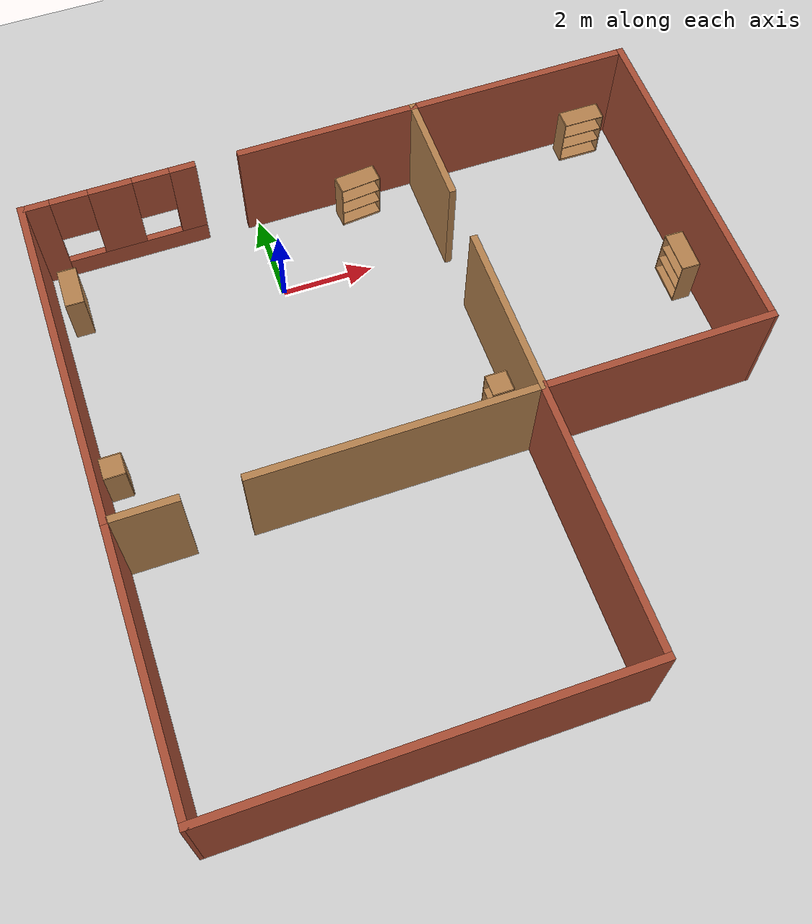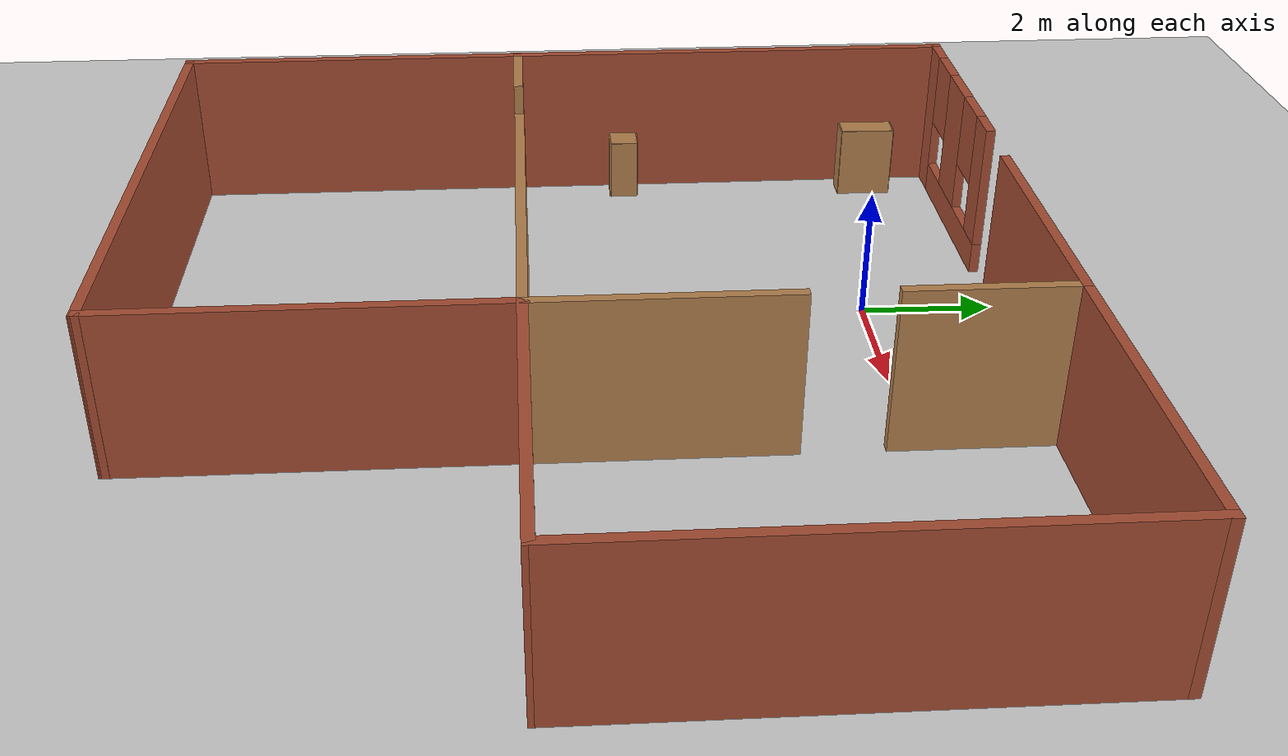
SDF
<sdf version="1.6">
 <world name="default">
  <model name="ground_plane">
   <static>1</static>
   <link name="link">
    <collision name="collision">
     <geometry><plane><normal>0 0 1</normal><size>100 100</size></plane></geometry>
     <surface>
      <contact><collide_bitmask>65535</collide_bitmask></contact>
      <friction><ode><mu>100</mu><mu2>50</mu2></ode></friction>
     </surface>
    </collision>
    <visual name="visual">
     <cast_shadows>0</cast_shadows>
     <geometry><plane><normal>0 0 1</normal><size>100 100</size></plane></geometry>
     <material>
      <script><uri>file://media/materials/scripts/gazebo.material</uri><name>Gazebo/Grey</name></script>
     </material>
    </visual>
   </link>
  </model>
  <model name="room_0">
   <pose>1.85693 -4.40399 0 0 -0 0</pose>
   <link name="Wall_17">
    <pose>-4.8743 6.45913 0 0 -0 0</pose>
    <visual name="Wall_17_Visual_0">
     <pose>-1.54646 0 1.25 0 -0 0</pose>
     <geometry><box><size>0.65708 0.15 2.5</size></box></geometry>
     <material>
      <script><uri>file://media/materials/scripts/gazebo.material</uri><name>Gazebo/Bricks</name></script>
      <ambient>1 1 1 1</ambient>
     </material>
     <meta><layer>0</layer></meta>
    </visual>
    <collision name="Wall_17_Collision_0">
     <geometry><box><size>0.65708 0.15 2.5</size></box></geometry>
     <pose>-1.54646 0 1.25 0 -0 0</pose>
    </collision>
    <visual name="Wall_17_Visual_1">
     <pose>0.32854 0 0.25 0 -0 0</pose>
     <geometry><box><size>3.09292 0.15 0.5</size></box></geometry>
     <material>
      <script><uri>file://media/materials/scripts/gazebo.material</uri><name>Gazebo/Bricks</name></script>
      <ambient>1 1 1 1</ambient>
     </material>
     <meta><layer>0</layer></meta>
    </visual>
    <collision name="Wall_17_Collision_1">
     <geometry><box><size>3.09292 0.15 0.5</size></box></geometry>
     <pose>0.32854 0 0.25 0 -0 0</pose>
    </collision>
    <visual name="Wall_17_Visual_2">
     <pose>0.046374 0 1.5 0 -0 0</pose>
     <geometry><box><size>0.928587 0.15 2</size></box></geometry>
     <material>
      <script><uri>file://media/materials/scripts/gazebo.material</uri><name>Gazebo/Bricks</name></script>
      <ambient>1 1 1 1</ambient>
     </material>
     <meta><layer>0</layer></meta>
    </visual>
    <collision name="Wall_17_Collision_2">
     <geometry><box><size>0.928587 0.15 2</size></box></geometry>
     <pose>0.046374 0 1.5 0 -0 0</pose>
    </collision>
    <visual name="Wall_17_Visual_3">
     <pose>1.59283 0 1.5 0 -0 0</pose>
     <geometry><box><size>0.564332 0.15 2</size></box></geometry>
     <material>
      <script><uri>file://media/materials/scripts/gazebo.material</uri><name>Gazebo/Bricks</name></script>
      <ambient>1 1 1 1</ambient>
     </material>
     <meta><layer>0</layer></meta>
    </visual>
    <collision name="Wall_17_Collision_3">
     <geometry><box><size>0.564332 0.15 2</size></box></geometry>
     <pose>1.59283 0 1.5 0 -0 0</pose>
    </collision>
    <visual name="Wall_17_Visual_4">
     <pose>-0.81792 0 1.9 0 -0 0</pose>
     <geometry><box><size>0.8 0.15 1.2</size></box></geometry>
     <material>
      <script><uri>file://media/materials/scripts/gazebo.material</uri><name>Gazebo/Bricks</name></script>
      <ambient>1 1 1 1</ambient>
     </material>
     <meta><layer>0</layer></meta>
    </visual>
    <collision name="Wall_17_Collision_4">
     <geometry><box><size>0.8 0.15 1.2</size></box></geometry>
     <pose>-0.81792 0 1.9 0 -0 0</pose>
    </collision>
    <visual name="Wall_17_Visual_5">
     <pose>0.910668 0 1.9 0 -0 0</pose>
     <geometry><box><size>0.8 0.15 1.2</size></box></geometry>
     <material>
      <script><uri>file://media/materials/scripts/gazebo.material</uri><name>Gazebo/Bricks</name></script>
      <ambient>1 1 1 1</ambient>
     </material>
     <meta><layer>0</layer></meta>
    </visual>
    <collision name="Wall_17_Collision_5">
     <geometry><box><size>0.8 0.15 1.2</size></box></geometry>
     <pose>0.910668 0 1.9 0 -0 0</pose>
    </collision>
   </link>
   <link name="Wall_20">
    <collision name="Wall_20_Collision">
     <geometry><box><size>4 0.15 2.5</size></box></geometry>
     <pose>0 0 1.25 0 -0 0</pose>
    </collision>
    <visual name="Wall_20_Visual">
     <pose>0 0 1.25 0 -0 0</pose>
     <geometry><box><size>4 0.15 2.5</size></box></geometry>
     <material>
      <script><uri>file://media/materials/scripts/gazebo.material</uri><name>Gazebo/Bricks</name></script>
      <ambient>1 1 1 1</ambient>
     </material>
     <meta><layer>0</layer></meta>
    </visual>
    <pose>-0.098548 6.4285 0 0 -0 0</pose>
   </link>
   <link name="Wall_21">
    <collision name="Wall_21_Collision">
     <geometry><box><size>2.5 0.15 2.5</size></box></geometry>
     <pose>0 0 1.25 0 -0 0</pose>
    </collision>
    <visual name="Wall_21_Visual">
     <pose>0 0 1.25 0 -0 0</pose>
     <geometry><box><size>2.5 0.15 2.5</size></box></geometry>
     <material>
      <script><uri>file://media/materials/scripts/gazebo.material</uri><name>Gazebo/Wood</name></script>
      <ambient>1 1 1 1</ambient>
     </material>
     <meta><layer>0</layer></meta>
    </visual>
    <pose>1.82645 5.2535 0 0 -0 -1.5708</pose>
   </link>
   <link name="Wall_23">
    <collision name="Wall_23_Collision">
     <geometry><box><size>3.76409 0.15 2.5</size></box></geometry>
     <pose>0 0 1.25 0 -0 0</pose>
    </collision>
    <visual name="Wall_23_Visual">
     <pose>0 0 1.25 0 -0 0</pose>
     <geometry><box><size>3.76409 0.15 2.5</size></box></geometry>
     <material>
      <script><uri>file://media/materials/scripts/gazebo.material</uri><name>Gazebo/Wood</name></script>
      <ambient>1 1 1 1</ambient>
     </material>
     <meta><layer>0</layer></meta>
    </visual>
    <pose>1.82733 0.943634 0 0 -0 -1.5708</pose>
   </link>
   <link name="Wall_24">
    <collision name="Wall_24_Collision">
     <geometry><box><size>6.00006 0.15 2.5</size></box></geometry>
     <pose>0 0 1.25 0 -0 0</pose>
    </collision>
    <visual name="Wall_24_Visual">
     <pose>0 0 1.25 0 -0 0</pose>
     <geometry><box><size>6.00006 0.15 2.5</size></box></geometry>
     <material>
      <script><uri>file://media/materials/scripts/gazebo.material</uri><name>Gazebo/Wood</name></script>
      <ambient>1 1 1 1</ambient>
     </material>
     <meta><layer>0</layer></meta>
    </visual>
    <pose>-1.09767 -0.856366 0 0 -0 3.13918</pose>
   </link>
   <link name="Wall_27">
    <collision name="Wall_27_Collision">
     <geometry><box><size>1.5 0.15 2.5</size></box></geometry>
     <pose>0 0 1.25 0 -0 0</pose>
    </collision>
    <visual name="Wall_27_Visual">
     <pose>0 0 1.25 0 -0 0</pose>
     <geometry><box><size>1.5 0.15 2.5</size></box></geometry>
     <material>
      <script><uri>file://media/materials/scripts/gazebo.material</uri><name>Gazebo/Wood</name></script>
      <ambient>1 1 1 1</ambient>
     </material>
     <meta><layer>0</layer></meta>
    </visual>
    <pose>-6.00257 -0.857586 0 0 -0 3.14159</pose>
   </link>
   <link name="Wall_30">
    <collision name="Wall_30_Collision">
     <geometry><box><size>7.47105 0.15 2.5</size></box></geometry>
     <pose>0 0 1.25 0 -0 0</pose>
    </collision>
    <visual name="Wall_30_Visual">
     <pose>0 0 1.25 0 -0 0</pose>
     <geometry><box><size>7.47105 0.15 2.5</size></box></geometry>
     <material>
      <script><uri>file://media/materials/scripts/gazebo.material</uri><name>Gazebo/Bricks</name></script>
      <ambient>1 1 1 1</ambient>
     </material>
     <meta><layer>0</layer></meta>
    </visual>
    <pose>-6.67491 2.80293 0 0 -0 1.57089</pose>
   </link>
   <link name="Wall_32">
    <collision name="Wall_32_Collision">
     <geometry><box><size>5.00007 0.15 2.5</size></box></geometry>
     <pose>0 0 1.25 0 -0 0</pose>
    </collision>
    <visual name="Wall_32_Visual">
     <pose>0 0 1.25 0 -0 0</pose>
     <geometry><box><size>5.00007 0.15 2.5</size></box></geometry>
     <material>
      <script><uri>file://media/materials/scripts/gazebo.material</uri><name>Gazebo/Bricks</name></script>
      <ambient>1 1 1 1</ambient>
     </material>
     <meta><layer>0</layer></meta>
    </visual>
    <pose>4.25232 -0.856366 0 0 -0 0.002904</pose>
   </link>
   <link name="Wall_33">
    <collision name="Wall_33_Collision">
     <geometry><box><size>7.42782 0.15 2.5</size></box></geometry>
     <pose>0 0 1.25 0 -0 0</pose>
    </collision>
    <visual name="Wall_33_Visual">
     <pose>0 0 1.25 0 -0 0</pose>
     <geometry><box><size>7.42782 0.15 2.5</size></box></geometry>
     <material>
      <script><uri>file://media/materials/scripts/gazebo.material</uri><name>Gazebo/Bricks</name></script>
      <ambient>1 1 1 1</ambient>
     </material>
     <meta><layer>0</layer></meta>
    </visual>
    <pose>6.67689 2.78959 0 0 -0 1.57092</pose>
   </link>
   <link name="Wall_34">
    <collision name="Wall_34_Collision">
     <geometry><box><size>5 0.15 2.5</size></box></geometry>
     <pose>0 0 1.25 0 -0 0</pose>
    </collision>
    <visual name="Wall_34_Visual">
     <pose>0 0 1.25 0 -0 0</pose>
     <geometry><box><size>5 0.15 2.5</size></box></geometry>
     <material>
      <script><uri>file://media/materials/scripts/gazebo.material</uri><name>Gazebo/Bricks</name></script>
      <ambient>1 1 1 1</ambient>
     </material>
     <meta><layer>0</layer></meta>
    </visual>
    <pose>4.25145 6.4285 0 0 -0 3.14159</pose>
   </link>
   <link name="Wall_36">
    <collision name="Wall_36_Collision">
     <geometry><box><size>5.75 0.15 2.5</size></box></geometry>
     <pose>0 0 1.25 0 -0 0</pose>
    </collision>
    <visual name="Wall_36_Visual">
     <pose>0 0 1.25 0 -0 0</pose>
     <geometry><box><size>5.75 0.15 2.5</size></box></geometry>
     <material>
      <script><uri>file://media/materials/scripts/gazebo.material</uri><name>Gazebo/Bricks</name></script>
      <ambient>1 1 1 1</ambient>
     </material>
     <meta><layer>0</layer></meta>
    </visual>
    <pose>-6.67455 -3.65759 0 0 -0 -1.5708</pose>
   </link>
   <link name="Wall_37">
    <collision name="Wall_37_Collision">
     <geometry><box><size>8.65195 0.15 2.5</size></box></geometry>
     <pose>0 0 1.25 0 -0 0</pose>
    </collision>
    <visual name="Wall_37_Visual">
     <pose>0 0 1.25 0 -0 0</pose>
     <geometry><box><size>8.65195 0.15 2.5</size></box></geometry>
     <material>
      <script><uri>file://media/materials/scripts/gazebo.material</uri><name>Gazebo/Bricks</name></script>
      <ambient>1 1 1 1</ambient>
     </material>
     <meta><layer>0</layer></meta>
    </visual>
    <pose>-2.42361 -6.4605 0 0 -0 -0.000685</pose>
   </link>
   <link name="Wall_38">
    <collision name="Wall_38_Collision">
     <geometry><box><size>5.75 0.15 2.5</size></box></geometry>
     <pose>0 0 1.25 0 -0 0</pose>
    </collision>
    <visual name="Wall_38_Visual">
     <pose>0 0 1.25 0 -0 0</pose>
     <geometry><box><size>5.75 0.15 2.5</size></box></geometry>
     <material>
      <script><uri>file://media/materials/scripts/gazebo.material</uri><name>Gazebo/Bricks</name></script>
      <ambient>1 1 1 1</ambient>
     </material>
     <meta><layer>0</layer></meta>
    </visual>
    <pose>1.82733 -3.64284 0 0 -0 1.5708</pose>
   </link>
   <static>1</static>
  </model>
  <model name="my_ball">
   <link name="link_0">
    <inertial>
     <mass>1</mass>
     <inertia><ixx>0.1</ixx><ixy>0</ixy><ixz>0</ixz><iyy>0.1</iyy><iyz>0</iyz><izz>0.1</izz></inertia>
    </inertial>
    <visual name="visual">
     <geometry><sphere><radius>0.1</radius></sphere></geometry>
     <material>
      <lighting>1</lighting>
      <script><uri>file://media/materials/scripts/gazebo.material</uri><name>Gazebo/White</name></script>
      <shader type="vertex"><normal_map>__default__</normal_map></shader>
      <ambient>1 1 1 1</ambient>
      <diffuse>1 1 1 1</diffuse>
      <specular>1 1 1 1</specular>
      <emissive>1 1 1 1</emissive>
     </material>
    </visual>
    <collision name="collision">
     <geometry><sphere><radius>0.1</radius></sphere></geometry>
     <surface>
      <friction>
       <ode><mu>1</mu><mu2>1</mu2><fdir1>0 0 0</fdir1><slip1>0</slip1><slip2>0</slip2></ode>
       <torsional>
        <coefficient>1</coefficient>
        <patch_radius>0</patch_radius>
        <surface_radius>0</surface_radius>
        <use_patch_radius>1</use_patch_radius>
        <ode><slip>0</slip></ode>
       </torsional>
      </friction>
      <bounce><restitution_coefficient>0</restitution_coefficient><threshold>1e+06</threshold></bounce>
      <contact>
       <collide_without_contact>0</collide_without_contact>
       <collide_without_contact_bitmask>1</collide_without_contact_bitmask>
       <collide_bitmask>1</collide_bitmask>
       <ode>
        <soft_cfm>0</soft_cfm>
        <soft_erp>0.2</soft_erp>
        <kp>1e+13</kp>
        <kd>1</kd>
        <max_vel>0.01</max_vel>
        <min_depth>0</min_depth>
       </ode>
       <bullet>
        <split_impulse>1</split_impulse>
        <split_impulse_penetration_threshold>-0.01</split_impulse_penetration_threshold>
        <soft_cfm>0</soft_cfm>
        <soft_erp>0.2</soft_erp>
        <kp>1e+13</kp>
        <kd>1</kd>
       </bullet>
      </contact>
     </surface>
    </collision>
   </link>
   <static>0</static>
   <pose>1.71113 3.28513 0.1 0 -0 0</pose>
  </model>
  <model name="bookshelf_clone">
   <static>1</static>
   <link name="link">
    <inertial><mass>1</mass></inertial>
    <collision name="back">
     <pose>0 0.005 0.6 0 -0 0</pose>
     <geometry><box><size>0.9 0.01 1.2</size></box></geometry>
    </collision>
    <visual name="visual1">
     <pose>0 0.005 0.6 0 -0 0</pose>
     <geometry><box><size>0.9 0.01 1.2</size></box></geometry>
     <material>
      <script><uri>file://media/materials/scripts/gazebo.material</uri><name>Gazebo/Wood</name></script>
     </material>
    </visual>
    <collision name="left_side">
     <pose>0.45 -0.195 0.6 0 -0 0</pose>
     <geometry><box><size>0.02 0.4 1.2</size></box></geometry>
    </collision>
    <visual name="visual2">
     <pose>0.45 -0.195 0.6 0 -0 0</pose>
     <geometry><box><size>0.02 0.4 1.2</size></box></geometry>
     <material>
      <script><uri>file://media/materials/scripts/gazebo.material</uri><name>Gazebo/Wood</name></script>
     </material>
    </visual>
    <collision name="right_side">
     <pose>-0.45 -0.195 0.6 0 -0 0</pose>
     <geometry><box><size>0.02 0.4 1.2</size></box></geometry>
    </collision>
    <visual name="visual3">
     <pose>-0.45 -0.195 0.6 0 -0 0</pose>
     <geometry><box><size>0.02 0.4 1.2</size></box></geometry>
     <material>
      <script><uri>file://media/materials/scripts/gazebo.material</uri><name>Gazebo/Wood</name></script>
     </material>
    </visual>
    <collision name="bottom">
     <pose>0 -0.195 0.03 0 -0 0</pose>
     <geometry><box><size>0.88 0.4 0.06</size></box></geometry>
    </collision>
    <visual name="visual4">
     <pose>0 -0.195 0.03 0 -0 0</pose>
     <geometry><box><size>0.88 0.4 0.06</size></box></geometry>
     <material>
      <script><uri>file://media/materials/scripts/gazebo.material</uri><name>Gazebo/Wood</name></script>
     </material>
    </visual>
    <collision name="top">
     <pose>0 -0.195 1.19 0 -0 0</pose>
     <geometry><box><size>0.88 0.4 0.02</size></box></geometry>
    </collision>
    <visual name="visual5">
     <pose>0 -0.195 1.19 0 -0 0</pose>
     <geometry><box><size>0.88 0.4 0.02</size></box></geometry>
     <material>
      <script><uri>file://media/materials/scripts/gazebo.material</uri><name>Gazebo/Wood</name></script>
     </material>
    </visual>
    <collision name="low_shelf">
     <pose>0 -0.195 0.43 0 -0 0</pose>
     <geometry><box><size>0.88 0.4 0.02</size></box></geometry>
    </collision>
    <visual name="visual6">
     <pose>0 -0.195 0.43 0 -0 0</pose>
     <geometry><box><size>0.88 0.4 0.02</size></box></geometry>
     <material>
      <script><uri>file://media/materials/scripts/gazebo.material</uri><name>Gazebo/Wood</name></script>
     </material>
    </visual>
    <collision name="high_shelf">
     <pose>0 -0.195 0.8 0 -0 0</pose>
     <geometry><box><size>0.88 0.4 0.02</size></box></geometry>
    </collision>
    <visual name="visual7">
     <pose>0 -0.195 0.8 0 -0 0</pose>
     <geometry><box><size>0.88 0.4 0.02</size></box></geometry>
     <material>
      <script><uri>file://media/materials/scripts/gazebo.material</uri><name>Gazebo/Wood</name></script>
     </material>
    </visual>
   </link>
   <pose>8.35245 -2.53099 0 0 0 -1.59234</pose>
  </model>
  <model name="bookshelf_clone_0_clone">
   <static>1</static>
   <link name="link">
    <inertial><mass>1</mass></inertial>
    <collision name="back">
     <pose>0 0.005 0.6 0 -0 0</pose>
     <geometry><box><size>0.9 0.01 1.2</size></box></geometry>
    </collision>
    <visual name="visual1">
     <pose>0 0.005 0.6 0 -0 0</pose>
     <geometry><box><size>0.9 0.01 1.2</size></box></geometry>
     <material>
      <script><uri>file://media/materials/scripts/gazebo.material</uri><name>Gazebo/Wood</name></script>
     </material>
    </visual>
    <collision name="left_side">
     <pose>0.45 -0.195 0.6 0 -0 0</pose>
     <geometry><box><size>0.02 0.4 1.2</size></box></geometry>
    </collision>
    <visual name="visual2">
     <pose>0.45 -0.195 0.6 0 -0 0</pose>
     <geometry><box><size>0.02 0.4 1.2</size></box></geometry>
     <material>
      <script><uri>file://media/materials/scripts/gazebo.material</uri><name>Gazebo/Wood</name></script>
     </material>
    </visual>
    <collision name="right_side">
     <pose>-0.45 -0.195 0.6 0 -0 0</pose>
     <geometry><box><size>0.02 0.4 1.2</size></box></geometry>
    </collision>
    <visual name="visual3">
     <pose>-0.45 -0.195 0.6 0 -0 0</pose>
     <geometry><box><size>0.02 0.4 1.2</size></box></geometry>
     <material>
      <script><uri>file://media/materials/scripts/gazebo.material</uri><name>Gazebo/Wood</name></script>
     </material>
    </visual>
    <collision name="bottom">
     <pose>0 -0.195 0.03 0 -0 0</pose>
     <geometry><box><size>0.88 0.4 0.06</size></box></geometry>
    </collision>
    <visual name="visual4">
     <pose>0 -0.195 0.03 0 -0 0</pose>
     <geometry><box><size>0.88 0.4 0.06</size></box></geometry>
     <material>
      <script><uri>file://media/materials/scripts/gazebo.material</uri><name>Gazebo/Wood</name></script>
     </material>
    </visual>
    <collision name="top">
     <pose>0 -0.195 1.19 0 -0 0</pose>
     <geometry><box><size>0.88 0.4 0.02</size></box></geometry>
    </collision>
    <visual name="visual5">
     <pose>0 -0.195 1.19 0 -0 0</pose>
     <geometry><box><size>0.88 0.4 0.02</size></box></geometry>
     <material>
      <script><uri>file://media/materials/scripts/gazebo.material</uri><name>Gazebo/Wood</name></script>
     </material>
    </visual>
    <collision name="low_shelf">
     <pose>0 -0.195 0.43 0 -0 0</pose>
     <geometry><box><size>0.88 0.4 0.02</size></box></geometry>
    </collision>
    <visual name="visual6">
     <pose>0 -0.195 0.43 0 -0 0</pose>
     <geometry><box><size>0.88 0.4 0.02</size></box></geometry>
     <material>
      <script><uri>file://media/materials/scripts/gazebo.material</uri><name>Gazebo/Wood</name></script>
     </material>
    </visual>
    <collision name="high_shelf">
     <pose>0 -0.195 0.8 0 -0 0</pose>
     <geometry><box><size>0.88 0.4 0.02</size></box></geometry>
    </collision>
    <visual name="visual7">
     <pose>0 -0.195 0.8 0 -0 0</pose>
     <geometry><box><size>0.88 0.4 0.02</size></box></geometry>
     <material>
      <script><uri>file://media/materials/scripts/gazebo.material</uri><name>Gazebo/Wood</name></script>
     </material>
    </visual>
   </link>
   <pose>-4.15139 0.820994 0 0 0 -1.58554</pose>
  </model>
  <model name="bookshelf_clone_0_clone_clone">
   <static>1</static>
   <link name="link">
    <inertial><mass>1</mass></inertial>
    <collision name="back">
     <pose>0 0.005 0.6 0 -0 0</pose>
     <geometry><box><size>0.9 0.01 1.2</size></box></geometry>
    </collision>
    <visual name="visual1">
     <pose>0 0.005 0.6 0 -0 0</pose>
     <geometry><box><size>0.9 0.01 1.2</size></box></geometry>
     <material>
      <script><uri>file://media/materials/scripts/gazebo.material</uri><name>Gazebo/Wood</name></script>
     </material>
    </visual>
    <collision name="left_side">
     <pose>0.45 -0.195 0.6 0 -0 0</pose>
     <geometry><box><size>0.02 0.4 1.2</size></box></geometry>
    </collision>
    <visual name="visual2">
     <pose>0.45 -0.195 0.6 0 -0 0</pose>
     <geometry><box><size>0.02 0.4 1.2</size></box></geometry>
     <material>
      <script><uri>file://media/materials/scripts/gazebo.material</uri><name>Gazebo/Wood</name></script>
     </material>
    </visual>
    <collision name="right_side">
     <pose>-0.45 -0.195 0.6 0 -0 0</pose>
     <geometry><box><size>0.02 0.4 1.2</size></box></geometry>
    </collision>
    <visual name="visual3">
     <pose>-0.45 -0.195 0.6 0 -0 0</pose>
     <geometry><box><size>0.02 0.4 1.2</size></box></geometry>
     <material>
      <script><uri>file://media/materials/scripts/gazebo.material</uri><name>Gazebo/Wood</name></script>
     </material>
    </visual>
    <collision name="bottom">
     <pose>0 -0.195 0.03 0 -0 0</pose>
     <geometry><box><size>0.88 0.4 0.06</size></box></geometry>
    </collision>
    <visual name="visual4">
     <pose>0 -0.195 0.03 0 -0 0</pose>
     <geometry><box><size>0.88 0.4 0.06</size></box></geometry>
     <material>
      <script><uri>file://media/materials/scripts/gazebo.material</uri><name>Gazebo/Wood</name></script>
     </material>
    </visual>
    <collision name="top">
     <pose>0 -0.195 1.19 0 -0 0</pose>
     <geometry><box><size>0.88 0.4 0.02</size></box></geometry>
    </collision>
    <visual name="visual5">
     <pose>0 -0.195 1.19 0 -0 0</pose>
     <geometry><box><size>0.88 0.4 0.02</size></box></geometry>
     <material>
      <script><uri>file://media/materials/scripts/gazebo.material</uri><name>Gazebo/Wood</name></script>
     </material>
    </visual>
    <collision name="low_shelf">
     <pose>0 -0.195 0.43 0 -0 0</pose>
     <geometry><box><size>0.88 0.4 0.02</size></box></geometry>
    </collision>
    <visual name="visual6">
     <pose>0 -0.195 0.43 0 -0 0</pose>
     <geometry><box><size>0.88 0.4 0.02</size></box></geometry>
     <material>
      <script><uri>file://media/materials/scripts/gazebo.material</uri><name>Gazebo/Wood</name></script>
     </material>
    </visual>
    <collision name="high_shelf">
     <pose>0 -0.195 0.8 0 -0 0</pose>
     <geometry><box><size>0.88 0.4 0.02</size></box></geometry>
    </collision>
    <visual name="visual7">
     <pose>0 -0.195 0.8 0 -0 0</pose>
     <geometry><box><size>0.88 0.4 0.02</size></box></geometry>
     <material>
      <script><uri>file://media/materials/scripts/gazebo.material</uri><name>Gazebo/Wood</name></script>
     </material>
    </visual>
   </link>
   <pose>2.21724 1.75462 0 0 -0 0.095556</pose>
  </model>
  <model name="bookshelf_clone_clone">
   <static>1</static>
   <link name="link">
    <inertial><mass>1</mass></inertial>
    <collision name="back">
     <pose>0 0.005 0.6 0 -0 0</pose>
     <geometry><box><size>0.9 0.01 1.2</size></box></geometry>
    </collision>
    <visual name="visual1">
     <pose>0 0.005 0.6 0 -0 0</pose>
     <geometry><box><size>0.9 0.01 1.2</size></box></geometry>
     <material>
      <script><uri>file://media/materials/scripts/gazebo.material</uri><name>Gazebo/Wood</name></script>
     </material>
    </visual>
    <collision name="left_side">
     <pose>0.45 -0.195 0.6 0 -0 0</pose>
     <geometry><box><size>0.02 0.4 1.2</size></box></geometry>
    </collision>
    <visual name="visual2">
     <pose>0.45 -0.195 0.6 0 -0 0</pose>
     <geometry><box><size>0.02 0.4 1.2</size></box></geometry>
     <material>
      <script><uri>file://media/materials/scripts/gazebo.material</uri><name>Gazebo/Wood</name></script>
     </material>
    </visual>
    <collision name="right_side">
     <pose>-0.45 -0.195 0.6 0 -0 0</pose>
     <geometry><box><size>0.02 0.4 1.2</size></box></geometry>
    </collision>
    <visual name="visual3">
     <pose>-0.45 -0.195 0.6 0 -0 0</pose>
     <geometry><box><size>0.02 0.4 1.2</size></box></geometry>
     <material>
      <script><uri>file://media/materials/scripts/gazebo.material</uri><name>Gazebo/Wood</name></script>
     </material>
    </visual>
    <collision name="bottom">
     <pose>0 -0.195 0.03 0 -0 0</pose>
     <geometry><box><size>0.88 0.4 0.06</size></box></geometry>
    </collision>
    <visual name="visual4">
     <pose>0 -0.195 0.03 0 -0 0</pose>
     <geometry><box><size>0.88 0.4 0.06</size></box></geometry>
     <material>
      <script><uri>file://media/materials/scripts/gazebo.material</uri><name>Gazebo/Wood</name></script>
     </material>
    </visual>
    <collision name="top">
     <pose>0 -0.195 1.19 0 -0 0</pose>
     <geometry><box><size>0.88 0.4 0.02</size></box></geometry>
    </collision>
    <visual name="visual5">
     <pose>0 -0.195 1.19 0 -0 0</pose>
     <geometry><box><size>0.88 0.4 0.02</size></box></geometry>
     <material>
      <script><uri>file://media/materials/scripts/gazebo.material</uri><name>Gazebo/Wood</name></script>
     </material>
    </visual>
    <collision name="low_shelf">
     <pose>0 -0.195 0.43 0 -0 0</pose>
     <geometry><box><size>0.88 0.4 0.02</size></box></geometry>
    </collision>
    <visual name="visual6">
     <pose>0 -0.195 0.43 0 -0 0</pose>
     <geometry><box><size>0.88 0.4 0.02</size></box></geometry>
     <material>
      <script><uri>file://media/materials/scripts/gazebo.material</uri><name>Gazebo/Wood</name></script>
     </material>
    </visual>
    <collision name="high_shelf">
     <pose>0 -0.195 0.8 0 -0 0</pose>
     <geometry><box><size>0.88 0.4 0.02</size></box></geometry>
    </collision>
    <visual name="visual7">
     <pose>0 -0.195 0.8 0 -0 0</pose>
     <geometry><box><size>0.88 0.4 0.02</size></box></geometry>
     <material>
      <script><uri>file://media/materials/scripts/gazebo.material</uri><name>Gazebo/Wood</name></script>
     </material>
    </visual>
   </link>
   <pose>7.60173 1.82179 0 0 0 -0.009036</pose>
  </model>
  <model name="cabinet_clone_clone_clone">
   <static>1</static>
   <link name="cabinet_bottom_plate">
    <inertial>
     <pose>0 0 -1 0 -0 0</pose>
     <inertia><ixx>2.05</ixx><ixy>0</ixy><ixz>0</ixz><iyy>2.05</iyy><iyz>0</iyz><izz>2.05</izz></inertia>
     <mass>25</mass>
    </inertial>
    <collision name="cabinet_bottom_plate_geom">
     <pose>0 0 0.01 0 -0 0</pose>
     <geometry><box><size>0.45 0.45 0.02</size></box></geometry>
    </collision>
    <visual name="cabinet_bottom_plate_geom_visual">
     <pose>0 0 0.01 0 -0 0</pose>
     <geometry><box><size>0.45 0.45 0.02</size></box></geometry>
     <material>
      <script><uri>file://media/materials/scripts/gazebo.material</uri><name>Gazebo/Wood</name></script>
     </material>
    </visual>
    <collision name="cabinet_bottom_plate_geom_cabinet_back_plate">
     <pose>0.235 0 0.51 0 -0 0</pose>
     <geometry><box><size>0.02 0.45 1.02</size></box></geometry>
    </collision>
    <visual name="cabinet_bottom_plate_geom_cabinet_back_plate_visual">
     <pose>0.235 0 0.51 0 -0 0</pose>
     <geometry><box><size>0.02 0.45 1.02</size></box></geometry>
     <material>
      <script><uri>file://media/materials/scripts/gazebo.material</uri><name>Gazebo/Wood</name></script>
     </material>
    </visual>
    <collision name="cabinet_bottom_plate_geom_cabinet_left_plate">
     <pose>0 0.235 0.51 0 -0 0</pose>
     <geometry><box><size>0.45 0.02 1.02</size></box></geometry>
    </collision>
    <visual name="cabinet_bottom_plate_geom_cabinet_left_plate_visual">
     <pose>0 0.235 0.51 0 -0 0</pose>
     <geometry><box><size>0.45 0.02 1.02</size></box></geometry>
     <material>
      <script><uri>file://media/materials/scripts/gazebo.material</uri><name>Gazebo/Wood</name></script>
     </material>
    </visual>
    <collision name="cabinet_bottom_plate_geom_cabinet_middle_plate">
     <pose>0 0 0.51 0 -0 0</pose>
     <geometry><box><size>0.45 0.45 0.02</size></box></geometry>
    </collision>
    <visual name="cabinet_bottom_plate_geom_cabinet_middle_plate_visual">
     <pose>0 0 0.51 0 -0 0</pose>
     <geometry><box><size>0.45 0.45 0.02</size></box></geometry>
     <material>
      <script><uri>file://media/materials/scripts/gazebo.material</uri><name>Gazebo/Wood</name></script>
     </material>
    </visual>
    <collision name="cabinet_bottom_plate_geom_cabinet_right_plate">
     <pose>0 -0.235 0.51 0 -0 0</pose>
     <geometry><box><size>0.45 0.02 1.02</size></box></geometry>
    </collision>
    <visual name="cabinet_bottom_plate_geom_cabinet_right_plate_visual">
     <pose>0 -0.235 0.51 0 -0 0</pose>
     <geometry><box><size>0.45 0.02 1.02</size></box></geometry>
     <material>
      <script><uri>file://media/materials/scripts/gazebo.material</uri><name>Gazebo/Wood</name></script>
     </material>
    </visual>
    <collision name="cabinet_bottom_plate_geom_cabinet_top_plate">
     <pose>0 0 1.01 0 -0 0</pose>
     <geometry><box><size>0.45 0.45 0.02</size></box></geometry>
    </collision>
    <visual name="cabinet_bottom_plate_geom_cabinet_top_plate_visual">
     <pose>0 0 1.01 0 -0 0</pose>
     <geometry><box><size>0.45 0.45 0.02</size></box></geometry>
     <material>
      <script><uri>file://media/materials/scripts/gazebo.material</uri><name>Gazebo/Wood</name></script>
     </material>
    </visual>
   </link>
   <pose>3.33057 -4.19172 0 0 -0 0</pose>
  </model>
  <model name="cabinet_clone_clone_clone_0">
   <static>1</static>
   <link name="cabinet_bottom_plate">
    <inertial>
     <pose>0 0 -1 0 -0 0</pose>
     <inertia><ixx>2.05</ixx><ixy>0</ixy><ixz>0</ixz><iyy>2.05</iyy><iyz>0</iyz><izz>2.05</izz></inertia>
     <mass>25</mass>
    </inertial>
    <collision name="cabinet_bottom_plate_geom">
     <pose>0 0 0.01 0 -0 0</pose>
     <geometry><box><size>0.45 0.45 0.02</size></box></geometry>
    </collision>
    <visual name="cabinet_bottom_plate_geom_visual">
     <pose>0 0 0.01 0 -0 0</pose>
     <geometry><box><size>0.45 0.45 0.02</size></box></geometry>
     <material>
      <script><uri>file://media/materials/scripts/gazebo.material</uri><name>Gazebo/Wood</name></script>
     </material>
    </visual>
    <collision name="cabinet_bottom_plate_geom_cabinet_back_plate">
     <pose>0.235 0 0.51 0 -0 0</pose>
     <geometry><box><size>0.02 0.45 1.02</size></box></geometry>
    </collision>
    <visual name="cabinet_bottom_plate_geom_cabinet_back_plate_visual">
     <pose>0.235 0 0.51 0 -0 0</pose>
     <geometry><box><size>0.02 0.45 1.02</size></box></geometry>
     <material>
      <script><uri>file://media/materials/scripts/gazebo.material</uri><name>Gazebo/Wood</name></script>
     </material>
    </visual>
    <collision name="cabinet_bottom_plate_geom_cabinet_left_plate">
     <pose>0 0.235 0.51 0 -0 0</pose>
     <geometry><box><size>0.45 0.02 1.02</size></box></geometry>
    </collision>
    <visual name="cabinet_bottom_plate_geom_cabinet_left_plate_visual">
     <pose>0 0.235 0.51 0 -0 0</pose>
     <geometry><box><size>0.45 0.02 1.02</size></box></geometry>
     <material>
      <script><uri>file://media/materials/scripts/gazebo.material</uri><name>Gazebo/Wood</name></script>
     </material>
    </visual>
    <collision name="cabinet_bottom_plate_geom_cabinet_middle_plate">
     <pose>0 0 0.51 0 -0 0</pose>
     <geometry><box><size>0.45 0.45 0.02</size></box></geometry>
    </collision>
    <visual name="cabinet_bottom_plate_geom_cabinet_middle_plate_visual">
     <pose>0 0 0.51 0 -0 0</pose>
     <geometry><box><size>0.45 0.45 0.02</size></box></geometry>
     <material>
      <script><uri>file://media/materials/scripts/gazebo.material</uri><name>Gazebo/Wood</name></script>
     </material>
    </visual>
    <collision name="cabinet_bottom_plate_geom_cabinet_right_plate">
     <pose>0 -0.235 0.51 0 -0 0</pose>
     <geometry><box><size>0.45 0.02 1.02</size></box></geometry>
    </collision>
    <visual name="cabinet_bottom_plate_geom_cabinet_right_plate_visual">
     <pose>0 -0.235 0.51 0 -0 0</pose>
     <geometry><box><size>0.45 0.02 1.02</size></box></geometry>
     <material>
      <script><uri>file://media/materials/scripts/gazebo.material</uri><name>Gazebo/Wood</name></script>
     </material>
    </visual>
    <collision name="cabinet_bottom_plate_geom_cabinet_top_plate">
     <pose>0 0 1.01 0 -0 0</pose>
     <geometry><box><size>0.45 0.45 0.02</size></box></geometry>
    </collision>
    <visual name="cabinet_bottom_plate_geom_cabinet_top_plate_visual">
     <pose>0 0 1.01 0 -0 0</pose>
     <geometry><box><size>0.45 0.45 0.02</size></box></geometry>
     <material>
      <script><uri>file://media/materials/scripts/gazebo.material</uri><name>Gazebo/Wood</name></script>
     </material>
    </visual>
   </link>
   <pose>-4.51025 -3.45074 0 0 -0 0</pose>
  </model>
 </world>
</sdf>
